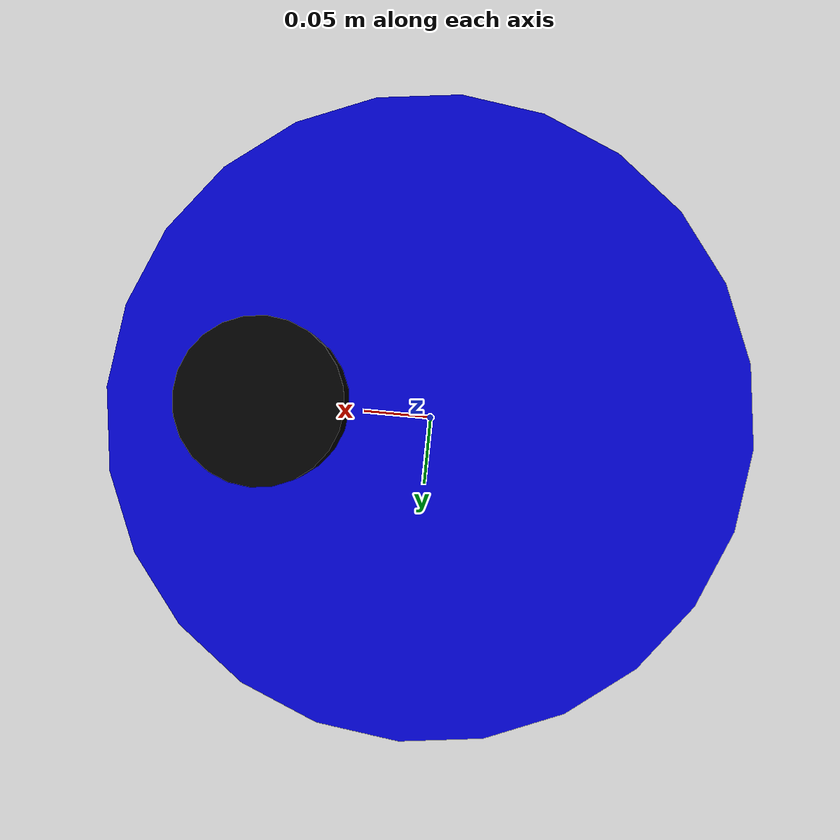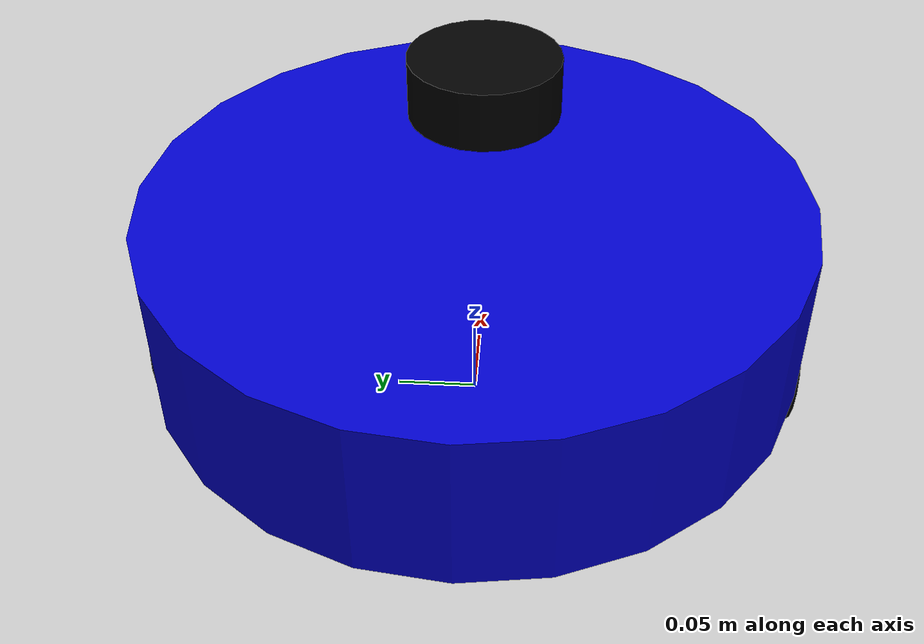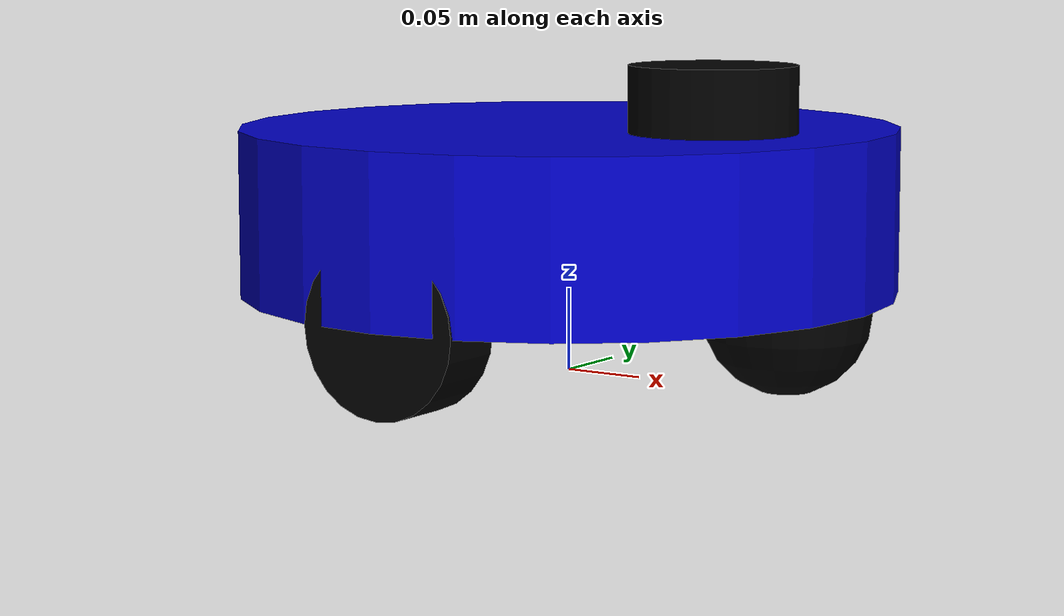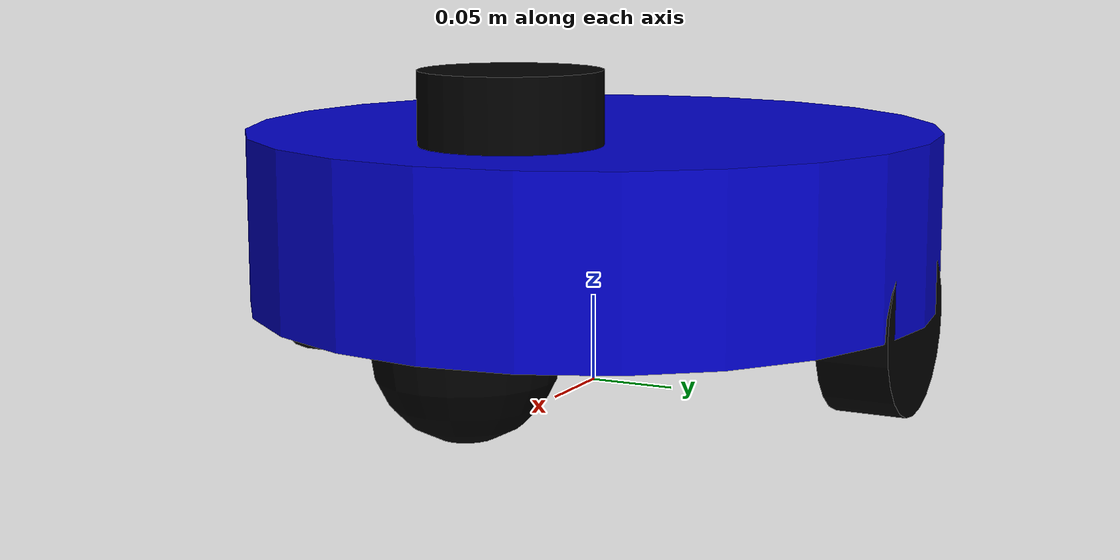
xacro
<?xml version="1.0"?>
<robot xmlns:xacro="http://www.ros.org/wiki/xacro" name="homecleanerbot">

    <material name="blue"> <color rgba="0 0 0.8 1"/> </material>
    <material name="black"> <color rgba="0 0 0 1"/> </material>

    <link name="base_footprint"/>

    <joint name="base_joint" type="fixed">
        <parent link="base_footprint"/>
        <child link="base_link"/>
        <origin xyz="0 0 0.1" rpy="0 0 0"/>
    </joint>

    <link name="base_link">
        <visual>
            <geometry> <cylinder radius="0.2" length="0.1"/> </geometry>
            <material name="blue"/>
        </visual>
        <collision>
            <geometry> <cylinder radius="0.2" length="0.1"/> </geometry>
        </collision>
        <inertial>
            <mass value="10.0"/>
            <inertia ixx="0.05" ixy="0" ixz="0" iyy="0.05" iyz="0" izz="0.1"/>
        </inertial>
    </link>

    <joint name="left_wheel_joint" type="continuous">
        <parent link="base_link"/>
        <child link="left_wheel"/>
        <origin xyz="0 0.175 -0.05" rpy="-${pi/2} 0 0"/>
        <axis xyz="0 0 1"/>
    </joint>

    <link name="left_wheel">
        <visual>
            <geometry> <cylinder radius="0.05" length="0.04"/> </geometry>
            <material name="black"/>
        </visual>
        <collision>
            <geometry> <cylinder radius="0.05" length="0.04"/> </geometry>
        </collision>
        <inertial>
            <mass value="0.1"/>
            <inertia ixx="0.0001" ixy="0" ixz="0" iyy="0.0001" iyz="0" izz="0.0001"/>
        </inertial>
    </link>

    <joint name="right_wheel_joint" type="continuous">
        <parent link="base_link"/>
        <child link="right_wheel"/>
        <origin xyz="0 -0.175 -0.05" rpy="${pi/2} 0 0"/>
        <axis xyz="0 0 1"/>
    </joint>

    <link name="right_wheel">
        <visual>
            <geometry> <cylinder radius="0.05" length="0.04"/> </geometry>
            <material name="black"/>
        </visual>
        <collision>
            <geometry> <cylinder radius="0.05" length="0.04"/> </geometry>
        </collision>
        <inertial>
            <mass value="0.1"/>
            <inertia ixx="0.0001" ixy="0" ixz="0" iyy="0.0001" iyz="0" izz="0.0001"/>
        </inertial>
    </link>

    <joint name="caster_wheel_joint" type="fixed">
        <parent link="base_link"/>
        <child link="caster_wheel"/>
        <origin xyz="0.15 0 -0.05" rpy="0 0 0"/>
    </joint>

    <link name="caster_wheel">
        <visual>
            <geometry> <sphere radius="0.05"/> </geometry>
            <material name="black"/>
        </visual>
        <collision>
            <geometry> <sphere radius="0.05"/> </geometry>
        </collision>
        <inertial>
            <mass value="0.1"/>
            <inertia ixx="0.0001" ixy="0" ixz="0" iyy="0.0001" iyz="0" izz="0.0001"/>
        </inertial>
    </link>

    <link name="laser_frame">
        <visual>
            <geometry> <cylinder radius="0.05" length="0.04"/> </geometry>
            <material name="black"/>
        </visual>
    </link>

    <joint name="laser_joint" type="fixed">
        <parent link="base_link"/>
        <child link="laser_frame"/>
        <origin xyz="0.1 0 0.07" rpy="0 0 0"/>
    </joint>

    <gazebo>
        <plugin name="diff_drive" filename="libgazebo_ros_diff_drive.so">
            <left_joint>left_wheel_joint</left_joint>
            <right_joint>right_wheel_joint</right_joint>
            <wheel_separation>0.35</wheel_separation>
            <wheel_diameter>0.1</wheel_diameter>
            <max_wheel_torque>20</max_wheel_torque>
            <max_wheel_acceleration>1.0</max_wheel_acceleration>
            <odometry_frame>odom</odometry_frame>
            <robot_base_frame>base_footprint</robot_base_frame>
            <publish_odom>true</publish_odom>
            <publish_odom_tf>true</publish_odom_tf>
            <publish_wheel_tf>true</publish_wheel_tf>
        </plugin>
    </gazebo>

    <gazebo reference="laser_frame">
        <sensor name="laser" type="ray">
            <pose> 0 0 0 0 0 0 </pose>
            <visualize>true</visualize>
            <update_rate>10</update_rate>
            <ray>
                <scan>
                    <horizontal>
                        <samples>360</samples>
                        <min_angle>-3.14</min_angle>
                        <max_angle>3.14</max_angle>
                    </horizontal>
                </scan>
                <range>
                    <min>0.3</min>
                    <max>12.0</max>
                </range>
            </ray>
            <plugin name="laser_controller" filename="libgazebo_ros_ray_sensor.so">
                <ros> <argument>~/out:=scan</argument> </ros>
                <output_type>sensor_msgs/LaserScan</output_type>
                <frame_name>laser_frame</frame_name>
            </plugin>
        </sensor>
    </gazebo>

    <!-- SOL TEKERLEK İÇİN -->
<gazebo reference="left_wheel">
    <mu1>2.0</mu1>
    <mu2>2.0</mu2>
    <kp>1000000.0</kp>
    <kd>100.0</kd>
    <material>Gazebo/Black</material>
</gazebo>

<gazebo reference="right_wheel">
    <mu1>2.0</mu1>
    <mu2>2.0</mu2>
    <kp>1000000.0</kp>
    <kd>100.0</kd>
    <material>Gazebo/Black</material>
</gazebo>

<gazebo reference="caster_wheel">
    <mu1>0.01</mu1>
    <mu2>0.01</mu2>
    <material>Gazebo/Grey</material>
</gazebo>

</robot>
